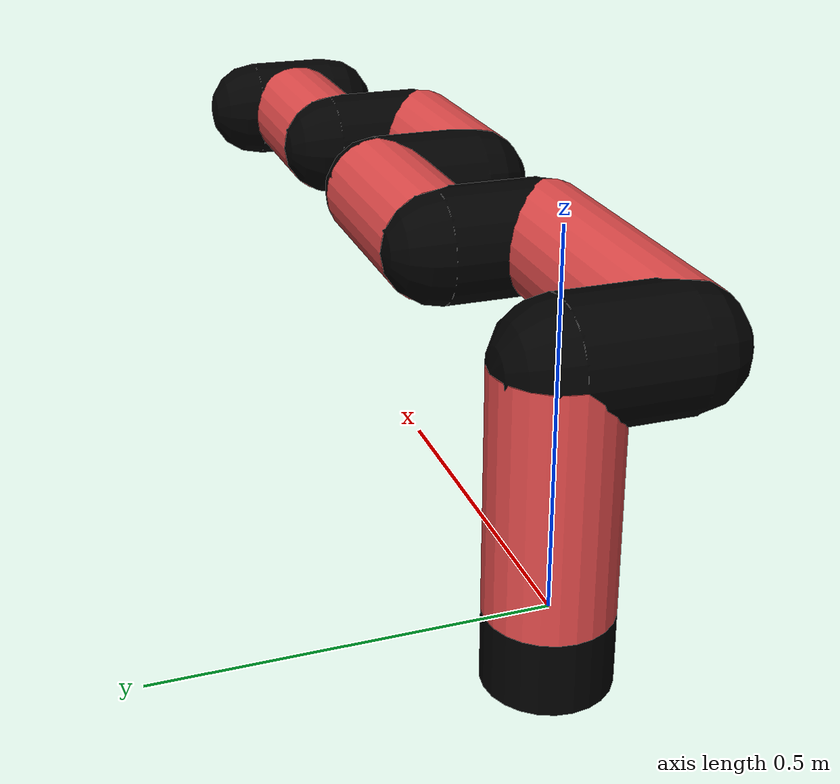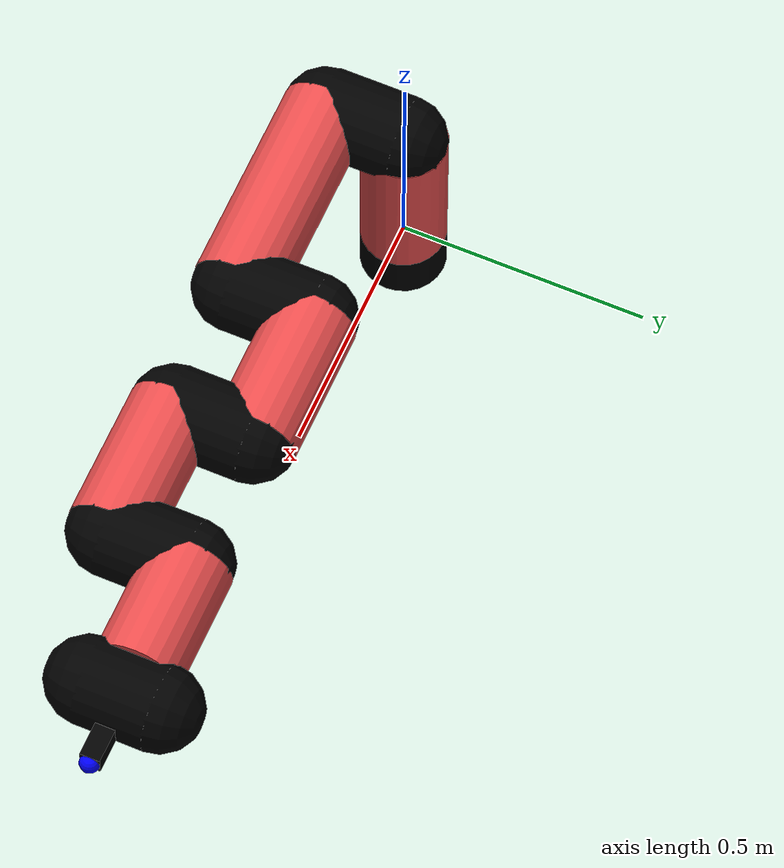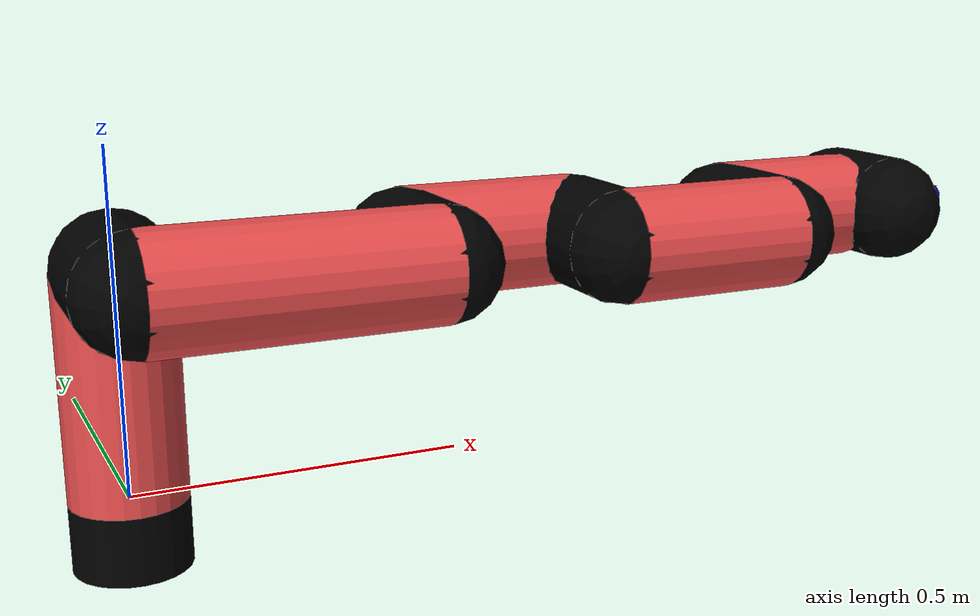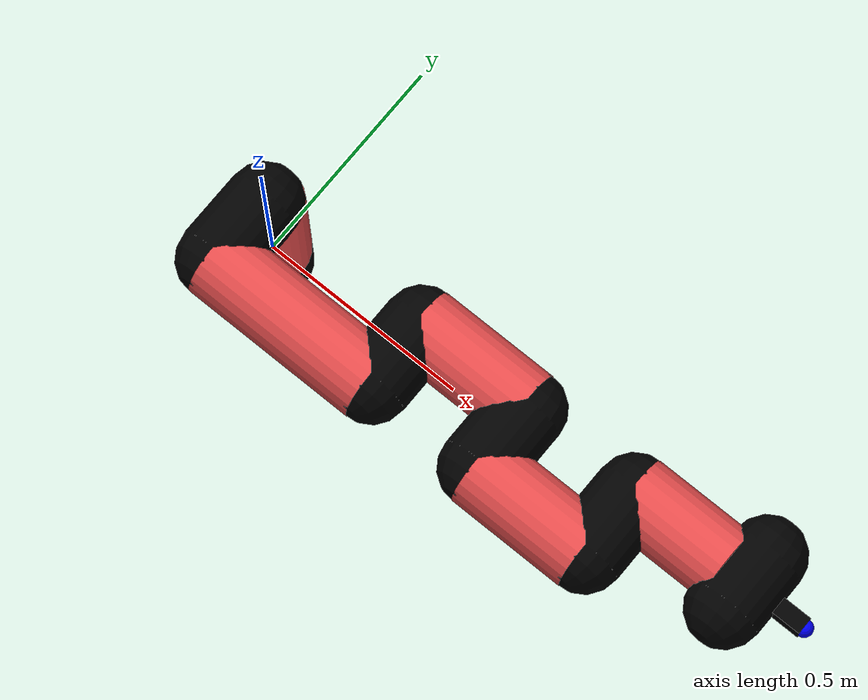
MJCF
<mujoco model="manipulator">
		<compiler angle="degree" coordinate="local" inertiafromgeom="auto" meshdir="meshes/"/>
		<option gravity="0 0 0" integrator="RK4" iterations="30" timestep="0.01"/>

		<default>
		<joint armature="1" limited="true" stiffness="10" damping="15" frictionloss="5.0"/>
		<geom conaffinity="1" condim="3" contype="1" friction=".5 .1 .1" margin="0.002"/>
		<motor ctrllimited="true"/>
		<position ctrllimited="true"/>
		</default>

		<asset>
		<texture builtin="gradient" height="100" rgb1="1.0 1.0 1.0" rgb2="1.0 1.0 1.0" type="skybox" width="100"/>
		<texture builtin="flat" height="32" name="arm_tex" rgb1="0.9 0.3 0.3" type="2d" width="32"/>
		<texture builtin="flat" height="32" name="gripper_tex" rgb1="0.0 0.0 0.0" type="cube" width="32"/>

		<material name="arm_mat" shininess="0.1" specular="0.1" texture="arm_tex"/>
		<material name="gripper_mat" shininess="1" specular="1" texture="gripper_tex"/>
		</asset>

		<worldbody>
		<light cutoff="45" diffuse=".8 .8 .8" dir="0 0.16 -1" directional="false" name="light" pos="0 -2.0 8.0" specular="0.3 0.3 0.3"/>

		<body name="base_link" pos="0 0 -0.1">
		<geom fromto="0 0 0 0 0 0.1" material="arm_mat" name="base_link" rgba="0.0 0.0 0.0 1" size="0.085" type="cylinder"/>
		</body>

		<body name="l1" pos="0 0 0">
<geom fromto="0 0 0 0 0 0.33" material="arm_mat" name="l1" rgba="0.9 0.3 0.3 1" size="0.085" type="cylinder"/>
<geom fromto="0 0 0.33 0 -0.16 0.33" material="arm_mat" name="l1_ex" rgba="0.0 0.0 0.0 1" size="0.085" type="capsule"/>
<joint axis="0 0 1" name="j1" pos="0 0 0" range="-90 90" damping="27.08" frictionloss="8.99"/>

<body name="l2" pos="0 -0.16 0.33">
<geom fromto="0 0 0 0.42 0 0" material="arm_mat" name="l2" rgba="0.9 0.3 0.3 1" size="0.085" type="cylinder"/>
<geom fromto="0.42 0 0 0.42 0.16 0" material="arm_mat" name="l2_ex" rgba="0.0 0.0 0.0 1" size="0.085" type="capsule"/>
<joint axis="0.0 1.0 0.0" name="j2" pos="0 0 0" range="-90 60" damping="26.32" frictionloss="8.54"/>

<body name="l3" pos="0.42 0.16 0">
<geom fromto="0 0 0 0.28 0 0" material="arm_mat" name="l3" rgba="0.9 0.3 0.3 1" size="0.085" type="cylinder"/>
<geom fromto="0.28 0 0 0.28 -0.16 0" material="arm_mat" name="l3_ex" rgba="0.0 0.0 0.0 1" size="0.085" type="capsule"/>
<joint axis="0.0 1.0 0.0" name="j3" pos="0 0 0" range="-30 60" damping="22.65" frictionloss="10.02"/>

<body name="l4" pos="0.28 -0.16 0">
<geom fromto="0 0 0 0.28 0 0" material="arm_mat" name="l4" rgba="0.9 0.3 0.3 1" size="0.085" type="cylinder"/>
<geom fromto="0.28 0 0 0.28 0.16 0" material="arm_mat" name="l4_ex" rgba="0.0 0.0 0.0 1" size="0.085" type="capsule"/>
<joint axis="0.0 1.0 0.0" name="j4" pos="0 0 0" range="-30 60" damping="23.95" frictionloss="8.31"/>

<body name="l5" pos="0.28 0.16 0">
<geom fromto="0 0 0 0.24 0 0" material="arm_mat" name="l5" rgba="0.9 0.3 0.3 1" size="0.085" type="cylinder"/>
<joint axis="0.0 1.0 0.0" name="j5" pos="0 0 0" range="-30 60" damping="34.21" frictionloss="10.9"/>

<body name="gripper" pos="0.24 0 0">
<geom fromto="0.05 -0.07 0 0.05 0.07 0" material="gripper_mat" name="gripper" rgba="0.0 0.0 0.0 1" size="0.085" type="capsule"/><joint axis="1 0 0" name="j6" pos="0 0 0" range="-90 90" damping="15" frictionloss="5.0"/><body name="finger" pos="0.1 0 0">
<geom fromto="0 0.0 0 0.1 0.0 0" material="gripper_mat" name="finger" rgba="0.0 0.0 0.0 1" size="0.020 0.06 0.06" type="box"/>
</body>
<site name="current" pos="0.2 0. 0.0" rgba="0. 0. 1.0 1" size="0.02" type="sphere"/>
</body>
</body>
</body>
</body>
</body>
</body>
</worldbody>
<actuator>
<motor ctrllimited="true" ctrlrange="-1.0 1.0" joint="j1" gear="62.16"/>
<motor ctrllimited="true" ctrlrange="-1.0 1.0" joint="j2" gear="61.69"/>
<motor ctrllimited="true" ctrlrange="-1.0 1.0" joint="j3" gear="60.11"/>
<motor ctrllimited="true" ctrlrange="-1.0 1.0" joint="j4" gear="87.87"/>
<motor ctrllimited="true" ctrlrange="-1.0 1.0" joint="j5" gear="85.63"/>
<motor ctrllimited="true" ctrlrange="-1.0 1.0" joint="j6" gear="80"/>
</actuator>
</mujoco>
